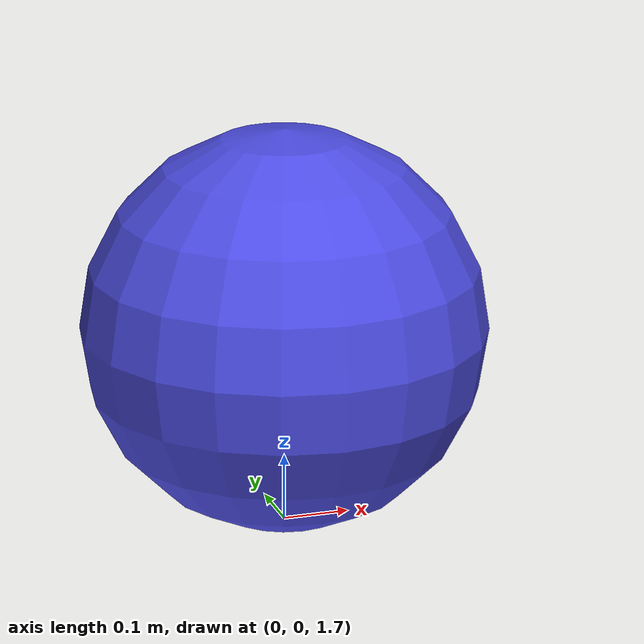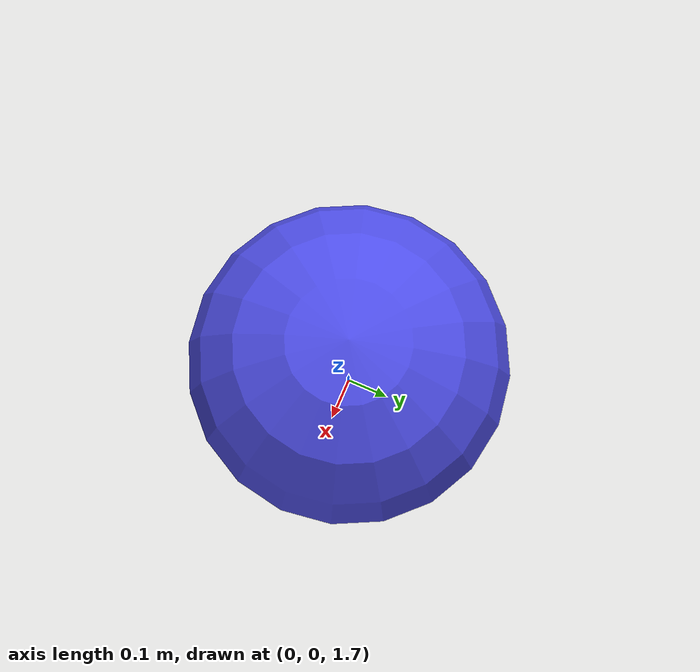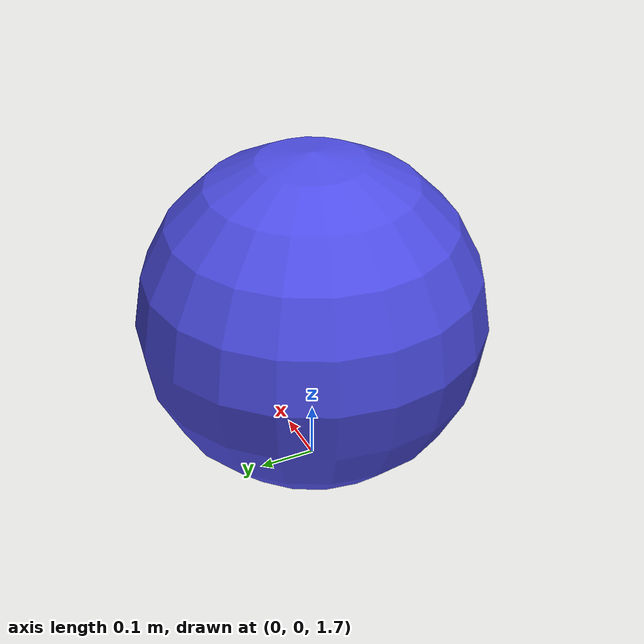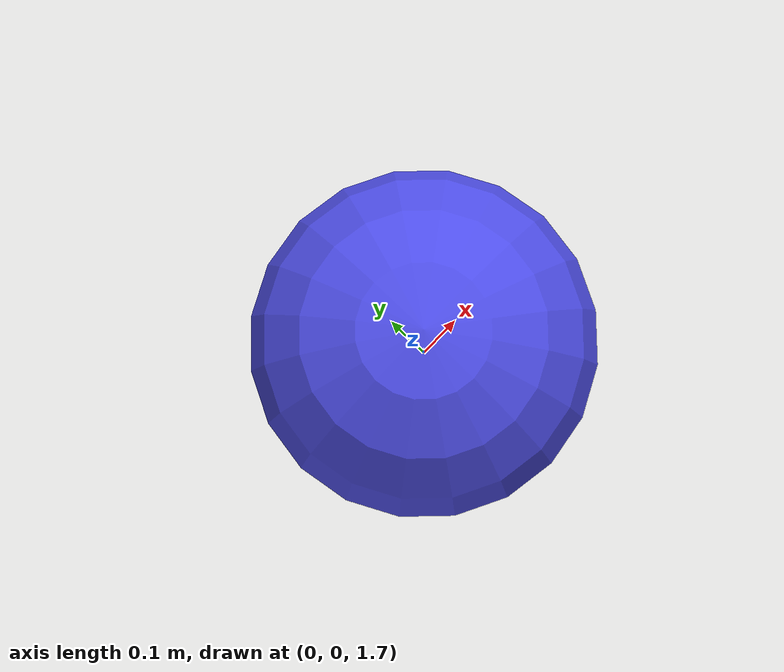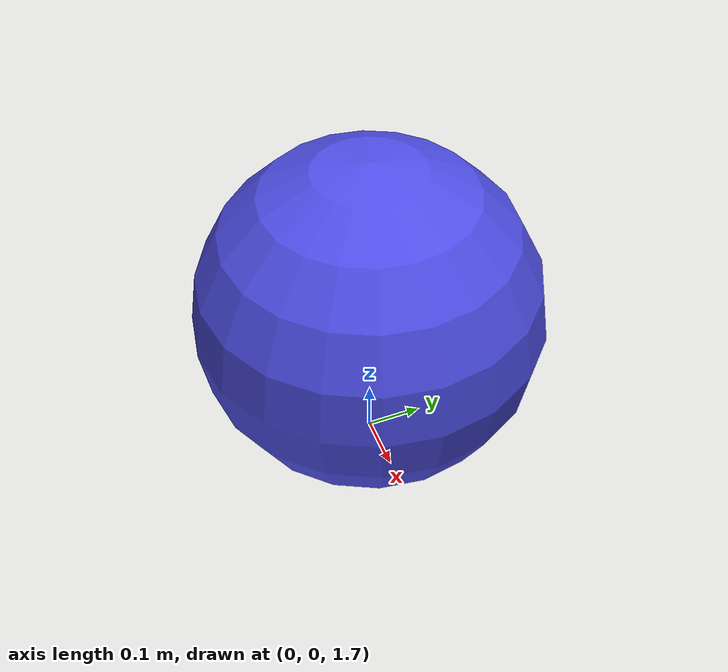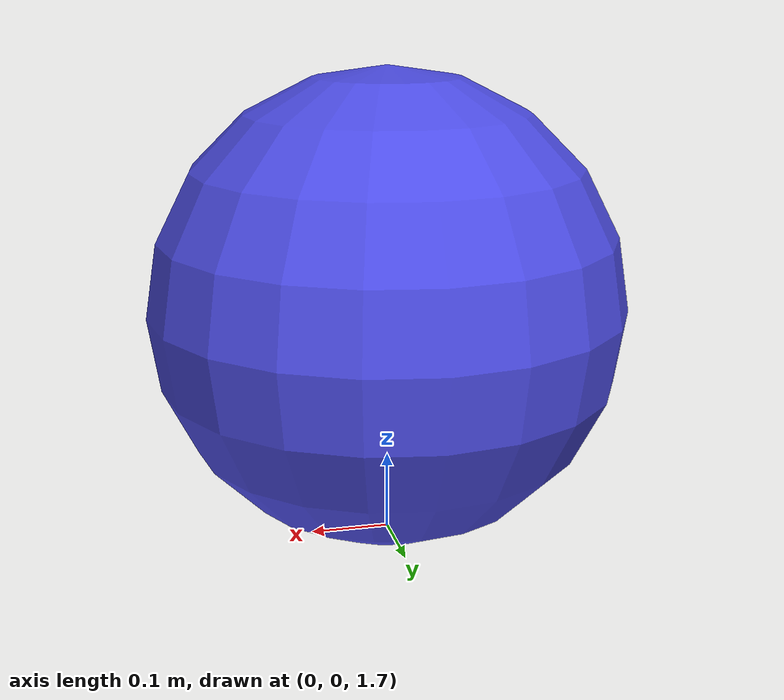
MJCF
<mujoco>
  <option gravity="0 0 -9.81" />
  <worldbody>
    <body name="object_2" pos="0 0 -0.1">
      <geom type="plane" size="30 30 0.1" rgba="0.9 0.9 0.9 1" friction="1 1 1" />
    </body>
    <body name="object_1" pos="0 0 2">
      <geom type="sphere" size="0.3" density="1" rgba="0.3 0.3 0.9 1" />
      <joint name="object_1_joint" type="free" />
    </body>
  </worldbody>
</mujoco>
